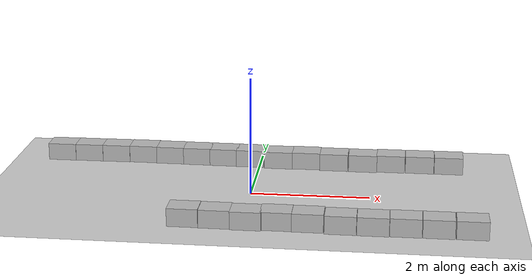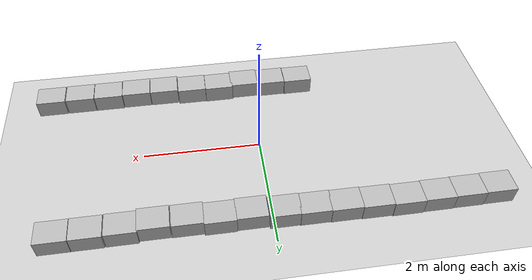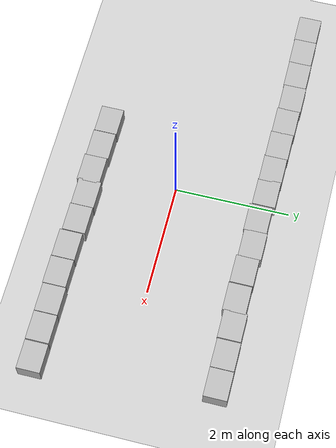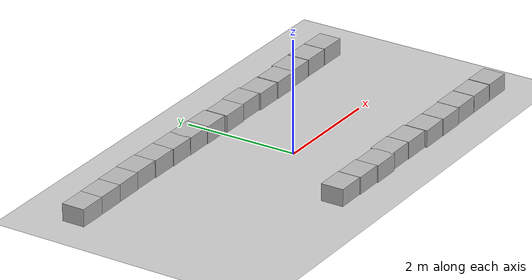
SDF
<sdf version="1.7">
 <world name="default">
  <light name="sun" type="directional">
   <pose>0 0 10 0 -0 0</pose>
   <diffuse>0.8 0.8 0.8 1</diffuse>
   <specular>0.2 0.2 0.2 1</specular>
   <attenuation>
    <range>1000</range>
    <constant>0.9</constant>
    <linear>0.01</linear>
    <quadratic>0.001</quadratic>
   </attenuation>
   <direction>-0.5 0.1 -0.9</direction>
   <spot><inner_angle>0</inner_angle><outer_angle>0</outer_angle><falloff>0</falloff></spot>
  </light>
  <model name="ground_plane">
   <static>1</static>
   <link name="link">
    <collision name="collision">
     <geometry><plane><normal>0 0 1</normal><size>100 100</size></plane></geometry>
     <surface><friction><ode><mu>100</mu><mu2>50</mu2></ode></friction></surface>
    </collision>
    <visual name="visual">
     <cast_shadows>0</cast_shadows>
     <geometry><plane><normal>0 0 1</normal><size>100 100</size></plane></geometry>
     <material>
      <script><uri>file://media/materials/scripts/gazebo.material</uri><name>Gazebo/Grey</name></script>
     </material>
    </visual>
   </link>
  </model>
  <gravity>0 0 -9.8</gravity>
  <magnetic_field>6e-06 2.3e-05 -4.2e-05</magnetic_field>
  <atmosphere type="adiabatic"/>
  <physics type="ode">
   <max_step_size>0.001</max_step_size>
   <real_time_factor>1</real_time_factor>
   <real_time_update_rate>1000</real_time_update_rate>
  </physics>
  <scene><ambient>0.4 0.4 0.4 1</ambient><background>0.7 0.7 0.7 1</background><shadows>1</shadows></scene>
  <audio><device>default</device></audio>
  <spherical_coordinates>
   <surface_model>EARTH_WGS84</surface_model>
   <latitude_deg>0</latitude_deg>
   <longitude_deg>0</longitude_deg>
   <elevation>0</elevation>
   <heading_deg>0</heading_deg>
  </spherical_coordinates>
  <model name="cardboard_box_clone">
   <pose>-3.61822 1.57708 0.15 0 -0 0</pose>
   <link name="link">
    <inertial>
     <mass>2</mass>
     <inertia>
      <ixx>0.0416667</ixx>
      <ixy>0</ixy>
      <ixz>0</ixz>
      <iyy>0.0566667</iyy>
      <iyz>0</iyz>
      <izz>0.0683333</izz>
     </inertia>
    </inertial>
    <collision name="collision">
     <geometry><box><size>0.5 0.4 0.3</size></box></geometry>
     <surface>
      <friction><ode><mu>1</mu><mu2>1</mu2></ode></friction>
      <contact><ode><kp>1e+07</kp><kd>1</kd><min_depth>0.001</min_depth><max_vel>0.1</max_vel></ode></contact>
     </surface>
    </collision>
    <visual name="visual">
     <pose>0 0 -0.15 0 -0 0</pose>
     <geometry>
      <mesh><uri>model://cardboard_box/meshes/cardboard_box.dae</uri><scale>1.25932 1.00745 0.755591</scale></mesh>
     </geometry>
    </visual>
   </link>
  </model>
  <model name="cardboard_box_clone_0">
   <pose>-3.11831 1.58363 0.15 0 -0 0</pose>
   <link name="link">
    <inertial>
     <mass>2</mass>
     <inertia>
      <ixx>0.0416667</ixx>
      <ixy>0</ixy>
      <ixz>0</ixz>
      <iyy>0.0566667</iyy>
      <iyz>0</iyz>
      <izz>0.0683333</izz>
     </inertia>
    </inertial>
    <collision name="collision">
     <geometry><box><size>0.5 0.4 0.3</size></box></geometry>
     <surface>
      <friction><ode><mu>1</mu><mu2>1</mu2></ode></friction>
      <contact><ode><kp>1e+07</kp><kd>1</kd><min_depth>0.001</min_depth><max_vel>0.1</max_vel></ode></contact>
     </surface>
    </collision>
    <visual name="visual">
     <pose>0 0 -0.15 0 -0 0</pose>
     <geometry>
      <mesh><uri>model://cardboard_box/meshes/cardboard_box.dae</uri><scale>1.25932 1.00745 0.755591</scale></mesh>
     </geometry>
    </visual>
   </link>
  </model>
  <model name="cardboard_box_clone_0_clone">
   <pose>-2.62109 1.5892 0.15 0 -0 0</pose>
   <link name="link">
    <inertial>
     <mass>2</mass>
     <inertia>
      <ixx>0.0416667</ixx>
      <ixy>0</ixy>
      <ixz>0</ixz>
      <iyy>0.0566667</iyy>
      <iyz>0</iyz>
      <izz>0.0683333</izz>
     </inertia>
    </inertial>
    <collision name="collision">
     <geometry><box><size>0.5 0.4 0.3</size></box></geometry>
     <surface>
      <friction><ode><mu>1</mu><mu2>1</mu2></ode></friction>
      <contact><ode><kp>1e+07</kp><kd>1</kd><min_depth>0.001</min_depth><max_vel>0.1</max_vel></ode></contact>
     </surface>
    </collision>
    <visual name="visual">
     <pose>0 0 -0.15 0 -0 0</pose>
     <geometry>
      <mesh><uri>model://cardboard_box/meshes/cardboard_box.dae</uri><scale>1.25932 1.00745 0.755591</scale></mesh>
     </geometry>
    </visual>
   </link>
  </model>
  <model name="cardboard_box_clone_0_clone_clone">
   <pose>-2.12182 1.5977 0.15 0 -0 0</pose>
   <link name="link">
    <inertial>
     <mass>2</mass>
     <inertia>
      <ixx>0.0416667</ixx>
      <ixy>0</ixy>
      <ixz>0</ixz>
      <iyy>0.0566667</iyy>
      <iyz>0</iyz>
      <izz>0.0683333</izz>
     </inertia>
    </inertial>
    <collision name="collision">
     <geometry><box><size>0.5 0.4 0.3</size></box></geometry>
     <surface>
      <friction><ode><mu>1</mu><mu2>1</mu2></ode></friction>
      <contact><ode><kp>1e+07</kp><kd>1</kd><min_depth>0.001</min_depth><max_vel>0.1</max_vel></ode></contact>
     </surface>
    </collision>
    <visual name="visual">
     <pose>0 0 -0.15 0 -0 0</pose>
     <geometry>
      <mesh><uri>model://cardboard_box/meshes/cardboard_box.dae</uri><scale>1.25932 1.00745 0.755591</scale></mesh>
     </geometry>
    </visual>
   </link>
  </model>
  <model name="cardboard_box_clone_0_clone_clone_clone">
   <pose>-1.62643 1.58487 0.15 0 -0 0</pose>
   <link name="link">
    <inertial>
     <mass>2</mass>
     <inertia>
      <ixx>0.0416667</ixx>
      <ixy>0</ixy>
      <ixz>0</ixz>
      <iyy>0.0566667</iyy>
      <iyz>0</iyz>
      <izz>0.0683333</izz>
     </inertia>
    </inertial>
    <collision name="collision">
     <geometry><box><size>0.5 0.4 0.3</size></box></geometry>
     <surface>
      <friction><ode><mu>1</mu><mu2>1</mu2></ode></friction>
      <contact><ode><kp>1e+07</kp><kd>1</kd><min_depth>0.001</min_depth><max_vel>0.1</max_vel></ode></contact>
     </surface>
    </collision>
    <visual name="visual">
     <pose>0 0 -0.15 0 -0 0</pose>
     <geometry>
      <mesh><uri>model://cardboard_box/meshes/cardboard_box.dae</uri><scale>1.25932 1.00745 0.755591</scale></mesh>
     </geometry>
    </visual>
   </link>
  </model>
  <model name="cardboard_box_clone_0_clone_clone_clone_clone">
   <pose>-1.13443 1.57519 0.15 0 -0 0</pose>
   <link name="link">
    <inertial>
     <mass>2</mass>
     <inertia>
      <ixx>0.0416667</ixx>
      <ixy>0</ixy>
      <ixz>0</ixz>
      <iyy>0.0566667</iyy>
      <iyz>0</iyz>
      <izz>0.0683333</izz>
     </inertia>
    </inertial>
    <collision name="collision">
     <geometry><box><size>0.5 0.4 0.3</size></box></geometry>
     <surface>
      <friction><ode><mu>1</mu><mu2>1</mu2></ode></friction>
      <contact><ode><kp>1e+07</kp><kd>1</kd><min_depth>0.001</min_depth><max_vel>0.1</max_vel></ode></contact>
     </surface>
    </collision>
    <visual name="visual">
     <pose>0 0 -0.15 0 -0 0</pose>
     <geometry>
      <mesh><uri>model://cardboard_box/meshes/cardboard_box.dae</uri><scale>1.25932 1.00745 0.755591</scale></mesh>
     </geometry>
    </visual>
   </link>
  </model>
  <model name="cardboard_box_clone_0_clone_clone_clone_clone_clone">
   <pose>-0.651178 1.56713 0.15 0 -0 0</pose>
   <link name="link">
    <inertial>
     <mass>2</mass>
     <inertia>
      <ixx>0.0416667</ixx>
      <ixy>0</ixy>
      <ixz>0</ixz>
      <iyy>0.0566667</iyy>
      <iyz>0</iyz>
      <izz>0.0683333</izz>
     </inertia>
    </inertial>
    <collision name="collision">
     <geometry><box><size>0.5 0.4 0.3</size></box></geometry>
     <surface>
      <friction><ode><mu>1</mu><mu2>1</mu2></ode></friction>
      <contact><ode><kp>1e+07</kp><kd>1</kd><min_depth>0.001</min_depth><max_vel>0.1</max_vel></ode></contact>
     </surface>
    </collision>
    <visual name="visual">
     <pose>0 0 -0.15 0 -0 0</pose>
     <geometry>
      <mesh><uri>model://cardboard_box/meshes/cardboard_box.dae</uri><scale>1.25932 1.00745 0.755591</scale></mesh>
     </geometry>
    </visual>
   </link>
  </model>
  <model name="cardboard_box_clone_0_clone_clone_clone_clone_clone_clone">
   <pose>-0.171969 1.55906 0.15 0 -0 0</pose>
   <link name="link">
    <inertial>
     <mass>2</mass>
     <inertia>
      <ixx>0.0416667</ixx>
      <ixy>0</ixy>
      <ixz>0</ixz>
      <iyy>0.0566667</iyy>
      <iyz>0</iyz>
      <izz>0.0683333</izz>
     </inertia>
    </inertial>
    <collision name="collision">
     <geometry><box><size>0.5 0.4 0.3</size></box></geometry>
     <surface>
      <friction><ode><mu>1</mu><mu2>1</mu2></ode></friction>
      <contact><ode><kp>1e+07</kp><kd>1</kd><min_depth>0.001</min_depth><max_vel>0.1</max_vel></ode></contact>
     </surface>
    </collision>
    <visual name="visual">
     <pose>0 0 -0.15 0 -0 0</pose>
     <geometry>
      <mesh><uri>model://cardboard_box/meshes/cardboard_box.dae</uri><scale>1.25932 1.00745 0.755591</scale></mesh>
     </geometry>
    </visual>
   </link>
  </model>
  <model name="cardboard_box_clone_0_clone_clone_clone_clone_clone_clone_clone">
   <pose>0.339534 1.52437 0.15 0 -0 0</pose>
   <link name="link">
    <inertial>
     <mass>2</mass>
     <inertia>
      <ixx>0.0416667</ixx>
      <ixy>0</ixy>
      <ixz>0</ixz>
      <iyy>0.0566667</iyy>
      <iyz>0</iyz>
      <izz>0.0683333</izz>
     </inertia>
    </inertial>
    <collision name="collision">
     <geometry><box><size>0.5 0.4 0.3</size></box></geometry>
     <surface>
      <friction><ode><mu>1</mu><mu2>1</mu2></ode></friction>
      <contact><ode><kp>1e+07</kp><kd>1</kd><min_depth>0.001</min_depth><max_vel>0.1</max_vel></ode></contact>
     </surface>
    </collision>
    <visual name="visual">
     <pose>0 0 -0.15 0 -0 0</pose>
     <geometry>
      <mesh><uri>model://cardboard_box/meshes/cardboard_box.dae</uri><scale>1.25932 1.00745 0.755591</scale></mesh>
     </geometry>
    </visual>
   </link>
  </model>
  <model name="cardboard_box_clone_0_clone_clone_clone_clone_clone_clone_clone_0">
   <pose>0.832769 1.53917 0.15 0 -0 0</pose>
   <link name="link">
    <inertial>
     <mass>2</mass>
     <inertia>
      <ixx>0.0416667</ixx>
      <ixy>0</ixy>
      <ixz>0</ixz>
      <iyy>0.0566667</iyy>
      <iyz>0</iyz>
      <izz>0.0683333</izz>
     </inertia>
    </inertial>
    <collision name="collision">
     <geometry><box><size>0.5 0.4 0.3</size></box></geometry>
     <surface>
      <friction><ode><mu>1</mu><mu2>1</mu2></ode></friction>
      <contact><ode><kp>1e+07</kp><kd>1</kd><min_depth>0.001</min_depth><max_vel>0.1</max_vel></ode></contact>
     </surface>
    </collision>
    <visual name="visual">
     <pose>0 0 -0.15 0 -0 0</pose>
     <geometry>
      <mesh><uri>model://cardboard_box/meshes/cardboard_box.dae</uri><scale>1.25932 1.00745 0.755591</scale></mesh>
     </geometry>
    </visual>
   </link>
  </model>
  <model name="cardboard_box_clone_0_clone_clone_clone_clone_clone_clone_clone_1">
   <pose>1.32888 1.51315 0.15 0 -0 0</pose>
   <link name="link">
    <inertial>
     <mass>2</mass>
     <inertia>
      <ixx>0.0416667</ixx>
      <ixy>0</ixy>
      <ixz>0</ixz>
      <iyy>0.0566667</iyy>
      <iyz>0</iyz>
      <izz>0.0683333</izz>
     </inertia>
    </inertial>
    <collision name="collision">
     <geometry><box><size>0.5 0.4 0.3</size></box></geometry>
     <surface>
      <friction><ode><mu>1</mu><mu2>1</mu2></ode></friction>
      <contact><ode><kp>1e+07</kp><kd>1</kd><min_depth>0.001</min_depth><max_vel>0.1</max_vel></ode></contact>
     </surface>
    </collision>
    <visual name="visual">
     <pose>0 0 -0.15 0 -0 0</pose>
     <geometry>
      <mesh><uri>model://cardboard_box/meshes/cardboard_box.dae</uri><scale>1.25932 1.00745 0.755591</scale></mesh>
     </geometry>
    </visual>
   </link>
  </model>
  <model name="cardboard_box_clone_0_clone_clone_clone_clone_clone_clone_clone_2">
   <pose>1.84281 1.50584 0.15 0 -0 0</pose>
   <link name="link">
    <inertial>
     <mass>2</mass>
     <inertia>
      <ixx>0.0416667</ixx>
      <ixy>0</ixy>
      <ixz>0</ixz>
      <iyy>0.0566667</iyy>
      <iyz>0</iyz>
      <izz>0.0683333</izz>
     </inertia>
    </inertial>
    <collision name="collision">
     <geometry><box><size>0.5 0.4 0.3</size></box></geometry>
     <surface>
      <friction><ode><mu>1</mu><mu2>1</mu2></ode></friction>
      <contact><ode><kp>1e+07</kp><kd>1</kd><min_depth>0.001</min_depth><max_vel>0.1</max_vel></ode></contact>
     </surface>
    </collision>
    <visual name="visual">
     <pose>0 0 -0.15 0 -0 0</pose>
     <geometry>
      <mesh><uri>model://cardboard_box/meshes/cardboard_box.dae</uri><scale>1.25932 1.00745 0.755591</scale></mesh>
     </geometry>
    </visual>
   </link>
  </model>
  <model name="cardboard_box_clone_0_clone_clone_clone_clone_clone_clone_clone_3">
   <pose>2.33156 1.5368 0.15 0 -0 0</pose>
   <link name="link">
    <inertial>
     <mass>2</mass>
     <inertia>
      <ixx>0.0416667</ixx>
      <ixy>0</ixy>
      <ixz>0</ixz>
      <iyy>0.0566667</iyy>
      <iyz>0</iyz>
      <izz>0.0683333</izz>
     </inertia>
    </inertial>
    <collision name="collision">
     <geometry><box><size>0.5 0.4 0.3</size></box></geometry>
     <surface>
      <friction><ode><mu>1</mu><mu2>1</mu2></ode></friction>
      <contact><ode><kp>1e+07</kp><kd>1</kd><min_depth>0.001</min_depth><max_vel>0.1</max_vel></ode></contact>
     </surface>
    </collision>
    <visual name="visual">
     <pose>0 0 -0.15 0 -0 0</pose>
     <geometry>
      <mesh><uri>model://cardboard_box/meshes/cardboard_box.dae</uri><scale>1.25932 1.00745 0.755591</scale></mesh>
     </geometry>
    </visual>
   </link>
  </model>
  <model name="cardboard_box_clone_0_clone_clone_clone_clone_clone_clone_clone_4">
   <pose>2.84455 1.54299 0.15 0 -0 0</pose>
   <link name="link">
    <inertial>
     <mass>2</mass>
     <inertia>
      <ixx>0.0416667</ixx>
      <ixy>0</ixy>
      <ixz>0</ixz>
      <iyy>0.0566667</iyy>
      <iyz>0</iyz>
      <izz>0.0683333</izz>
     </inertia>
    </inertial>
    <collision name="collision">
     <geometry><box><size>0.5 0.4 0.3</size></box></geometry>
     <surface>
      <friction><ode><mu>1</mu><mu2>1</mu2></ode></friction>
      <contact><ode><kp>1e+07</kp><kd>1</kd><min_depth>0.001</min_depth><max_vel>0.1</max_vel></ode></contact>
     </surface>
    </collision>
    <visual name="visual">
     <pose>0 0 -0.15 0 -0 0</pose>
     <geometry>
      <mesh><uri>model://cardboard_box/meshes/cardboard_box.dae</uri><scale>1.25932 1.00745 0.755591</scale></mesh>
     </geometry>
    </visual>
   </link>
  </model>
  <model name="cardboard_box_clone_0_clone_clone_clone_clone_clone_clone_clone_5">
   <pose>3.35057 1.54472 0.15 0 -0 0</pose>
   <link name="link">
    <inertial>
     <mass>2</mass>
     <inertia>
      <ixx>0.0416667</ixx>
      <ixy>0</ixy>
      <ixz>0</ixz>
      <iyy>0.0566667</iyy>
      <iyz>0</iyz>
      <izz>0.0683333</izz>
     </inertia>
    </inertial>
    <collision name="collision">
     <geometry><box><size>0.5 0.4 0.3</size></box></geometry>
     <surface>
      <friction><ode><mu>1</mu><mu2>1</mu2></ode></friction>
      <contact><ode><kp>1e+07</kp><kd>1</kd><min_depth>0.001</min_depth><max_vel>0.1</max_vel></ode></contact>
     </surface>
    </collision>
    <visual name="visual">
     <pose>0 0 -0.15 0 -0 0</pose>
     <geometry>
      <mesh><uri>model://cardboard_box/meshes/cardboard_box.dae</uri><scale>1.25932 1.00745 0.755591</scale></mesh>
     </geometry>
    </visual>
   </link>
  </model>
  <model name="cardboard_box_clone_0_clone_clone_clone_clone_clone_clone_clone_2_clone">
   <pose>3.62415 -1.47103 0.15 0 -0 0</pose>
   <link name="link">
    <inertial>
     <mass>2</mass>
     <inertia>
      <ixx>0.0416667</ixx>
      <ixy>0</ixy>
      <ixz>0</ixz>
      <iyy>0.0566667</iyy>
      <iyz>0</iyz>
      <izz>0.0683333</izz>
     </inertia>
    </inertial>
    <collision name="collision">
     <geometry><box><size>0.5 0.4 0.3</size></box></geometry>
     <surface>
      <friction><ode><mu>1</mu><mu2>1</mu2></ode></friction>
      <contact><ode><kp>1e+07</kp><kd>1</kd><min_depth>0.001</min_depth><max_vel>0.1</max_vel></ode></contact>
     </surface>
    </collision>
    <visual name="visual">
     <pose>0 0 -0.15 0 -0 0</pose>
     <geometry>
      <mesh><uri>model://cardboard_box/meshes/cardboard_box.dae</uri><scale>1.25932 1.00745 0.755591</scale></mesh>
     </geometry>
    </visual>
   </link>
  </model>
  <model name="cardboard_box_clone_0_clone_clone_clone_clone_clone_clone_clone_2_clone_0">
   <pose>3.10866 -1.47434 0.15 0 -0 0</pose>
   <link name="link">
    <inertial>
     <mass>2</mass>
     <inertia>
      <ixx>0.0416667</ixx>
      <ixy>0</ixy>
      <ixz>0</ixz>
      <iyy>0.0566667</iyy>
      <iyz>0</iyz>
      <izz>0.0683333</izz>
     </inertia>
    </inertial>
    <collision name="collision">
     <geometry><box><size>0.5 0.4 0.3</size></box></geometry>
     <surface>
      <friction><ode><mu>1</mu><mu2>1</mu2></ode></friction>
      <contact><ode><kp>1e+07</kp><kd>1</kd><min_depth>0.001</min_depth><max_vel>0.1</max_vel></ode></contact>
     </surface>
    </collision>
    <visual name="visual">
     <pose>0 0 -0.15 0 -0 0</pose>
     <geometry>
      <mesh><uri>model://cardboard_box/meshes/cardboard_box.dae</uri><scale>1.25932 1.00745 0.755591</scale></mesh>
     </geometry>
    </visual>
   </link>
  </model>
  <model name="cardboard_box_clone_0_clone_clone_clone_clone_clone_clone_clone_2_clone_1">
   <pose>2.60113 -1.47558 0.15 0 -0 0</pose>
   <link name="link">
    <inertial>
     <mass>2</mass>
     <inertia>
      <ixx>0.0416667</ixx>
      <ixy>0</ixy>
      <ixz>0</ixz>
      <iyy>0.0566667</iyy>
      <iyz>0</iyz>
      <izz>0.0683333</izz>
     </inertia>
    </inertial>
    <collision name="collision">
     <geometry><box><size>0.5 0.4 0.3</size></box></geometry>
     <surface>
      <friction><ode><mu>1</mu><mu2>1</mu2></ode></friction>
      <contact><ode><kp>1e+07</kp><kd>1</kd><min_depth>0.001</min_depth><max_vel>0.1</max_vel></ode></contact>
     </surface>
    </collision>
    <visual name="visual">
     <pose>0 0 -0.15 0 -0 0</pose>
     <geometry>
      <mesh><uri>model://cardboard_box/meshes/cardboard_box.dae</uri><scale>1.25932 1.00745 0.755591</scale></mesh>
     </geometry>
    </visual>
   </link>
  </model>
  <model name="cardboard_box_clone_0_clone_clone_clone_clone_clone_clone_clone_2_clone_2">
   <pose>2.09485 -1.48711 0.15 0 -0 0</pose>
   <link name="link">
    <inertial>
     <mass>2</mass>
     <inertia>
      <ixx>0.0416667</ixx>
      <ixy>0</ixy>
      <ixz>0</ixz>
      <iyy>0.0566667</iyy>
      <iyz>0</iyz>
      <izz>0.0683333</izz>
     </inertia>
    </inertial>
    <collision name="collision">
     <geometry><box><size>0.5 0.4 0.3</size></box></geometry>
     <surface>
      <friction><ode><mu>1</mu><mu2>1</mu2></ode></friction>
      <contact><ode><kp>1e+07</kp><kd>1</kd><min_depth>0.001</min_depth><max_vel>0.1</max_vel></ode></contact>
     </surface>
    </collision>
    <visual name="visual">
     <pose>0 0 -0.15 0 -0 0</pose>
     <geometry>
      <mesh><uri>model://cardboard_box/meshes/cardboard_box.dae</uri><scale>1.25932 1.00745 0.755591</scale></mesh>
     </geometry>
    </visual>
   </link>
  </model>
  <model name="cardboard_box_clone_0_clone_clone_clone_clone_clone_clone_clone_2_clone_3">
   <pose>1.58866 -1.48219 0.15 0 -0 0</pose>
   <link name="link">
    <inertial>
     <mass>2</mass>
     <inertia>
      <ixx>0.0416667</ixx>
      <ixy>0</ixy>
      <ixz>0</ixz>
      <iyy>0.0566667</iyy>
      <iyz>0</iyz>
      <izz>0.0683333</izz>
     </inertia>
    </inertial>
    <collision name="collision">
     <geometry><box><size>0.5 0.4 0.3</size></box></geometry>
     <surface>
      <friction><ode><mu>1</mu><mu2>1</mu2></ode></friction>
      <contact><ode><kp>1e+07</kp><kd>1</kd><min_depth>0.001</min_depth><max_vel>0.1</max_vel></ode></contact>
     </surface>
    </collision>
    <visual name="visual">
     <pose>0 0 -0.15 0 -0 0</pose>
     <geometry>
      <mesh><uri>model://cardboard_box/meshes/cardboard_box.dae</uri><scale>1.25932 1.00745 0.755591</scale></mesh>
     </geometry>
    </visual>
   </link>
  </model>
  <model name="cardboard_box_clone_0_clone_clone_clone_clone_clone_clone_clone_2_clone_4">
   <pose>1.0771 -1.44842 0.15 0 -0 0</pose>
   <link name="link">
    <inertial>
     <mass>2</mass>
     <inertia>
      <ixx>0.0416667</ixx>
      <ixy>0</ixy>
      <ixz>0</ixz>
      <iyy>0.0566667</iyy>
      <iyz>0</iyz>
      <izz>0.0683333</izz>
     </inertia>
    </inertial>
    <collision name="collision">
     <geometry><box><size>0.5 0.4 0.3</size></box></geometry>
     <surface>
      <friction><ode><mu>1</mu><mu2>1</mu2></ode></friction>
      <contact><ode><kp>1e+07</kp><kd>1</kd><min_depth>0.001</min_depth><max_vel>0.1</max_vel></ode></contact>
     </surface>
    </collision>
    <visual name="visual">
     <pose>0 0 -0.15 0 -0 0</pose>
     <geometry>
      <mesh><uri>model://cardboard_box/meshes/cardboard_box.dae</uri><scale>1.25932 1.00745 0.755591</scale></mesh>
     </geometry>
    </visual>
   </link>
  </model>
  <model name="cardboard_box_clone_0_clone_clone_clone_clone_clone_clone_clone_2_clone_5">
   <pose>0.575046 -1.43866 0.15 0 -0 0</pose>
   <link name="link">
    <inertial>
     <mass>2</mass>
     <inertia>
      <ixx>0.0416667</ixx>
      <ixy>0</ixy>
      <ixz>0</ixz>
      <iyy>0.0566667</iyy>
      <iyz>0</iyz>
      <izz>0.0683333</izz>
     </inertia>
    </inertial>
    <collision name="collision">
     <geometry><box><size>0.5 0.4 0.3</size></box></geometry>
     <surface>
      <friction><ode><mu>1</mu><mu2>1</mu2></ode></friction>
      <contact><ode><kp>1e+07</kp><kd>1</kd><min_depth>0.001</min_depth><max_vel>0.1</max_vel></ode></contact>
     </surface>
    </collision>
    <visual name="visual">
     <pose>0 0 -0.15 0 -0 0</pose>
     <geometry>
      <mesh><uri>model://cardboard_box/meshes/cardboard_box.dae</uri><scale>1.25932 1.00745 0.755591</scale></mesh>
     </geometry>
    </visual>
   </link>
  </model>
  <model name="cardboard_box_clone_0_clone_clone_clone_clone_clone_clone_clone_2_clone_6">
   <pose>0.100963 -1.46881 0.15 0 -0 0</pose>
   <link name="link">
    <inertial>
     <mass>2</mass>
     <inertia>
      <ixx>0.0416667</ixx>
      <ixy>0</ixy>
      <ixz>0</ixz>
      <iyy>0.0566667</iyy>
      <iyz>0</iyz>
      <izz>0.0683333</izz>
     </inertia>
    </inertial>
    <collision name="collision">
     <geometry><box><size>0.5 0.4 0.3</size></box></geometry>
     <surface>
      <friction><ode><mu>1</mu><mu2>1</mu2></ode></friction>
      <contact><ode><kp>1e+07</kp><kd>1</kd><min_depth>0.001</min_depth><max_vel>0.1</max_vel></ode></contact>
     </surface>
    </collision>
    <visual name="visual">
     <pose>0 0 -0.15 0 -0 0</pose>
     <geometry>
      <mesh><uri>model://cardboard_box/meshes/cardboard_box.dae</uri><scale>1.25932 1.00745 0.755591</scale></mesh>
     </geometry>
    </visual>
   </link>
  </model>
  <model name="cardboard_box_clone_0_clone_clone_clone_clone_clone_clone_clone_2_clone_7">
   <pose>-0.39862 -1.44855 0.15 0 -0 0</pose>
   <link name="link">
    <inertial>
     <mass>2</mass>
     <inertia>
      <ixx>0.0416667</ixx>
      <ixy>0</ixy>
      <ixz>0</ixz>
      <iyy>0.0566667</iyy>
      <iyz>0</iyz>
      <izz>0.0683333</izz>
     </inertia>
    </inertial>
    <collision name="collision">
     <geometry><box><size>0.5 0.4 0.3</size></box></geometry>
     <surface>
      <friction><ode><mu>1</mu><mu2>1</mu2></ode></friction>
      <contact><ode><kp>1e+07</kp><kd>1</kd><min_depth>0.001</min_depth><max_vel>0.1</max_vel></ode></contact>
     </surface>
    </collision>
    <visual name="visual">
     <pose>0 0 -0.15 0 -0 0</pose>
     <geometry>
      <mesh><uri>model://cardboard_box/meshes/cardboard_box.dae</uri><scale>1.25932 1.00745 0.755591</scale></mesh>
     </geometry>
    </visual>
   </link>
  </model>
  <model name="cardboard_box_clone_0_clone_clone_clone_clone_clone_clone_clone_2_clone_8">
   <pose>-0.903917 -1.43787 0.15 0 -0 0</pose>
   <link name="link">
    <inertial>
     <mass>2</mass>
     <inertia>
      <ixx>0.0416667</ixx>
      <ixy>0</ixy>
      <ixz>0</ixz>
      <iyy>0.0566667</iyy>
      <iyz>0</iyz>
      <izz>0.0683333</izz>
     </inertia>
    </inertial>
    <collision name="collision">
     <geometry><box><size>0.5 0.4 0.3</size></box></geometry>
     <surface>
      <friction><ode><mu>1</mu><mu2>1</mu2></ode></friction>
      <contact><ode><kp>1e+07</kp><kd>1</kd><min_depth>0.001</min_depth><max_vel>0.1</max_vel></ode></contact>
     </surface>
    </collision>
    <visual name="visual">
     <pose>0 0 -0.15 0 -0 0</pose>
     <geometry>
      <mesh><uri>model://cardboard_box/meshes/cardboard_box.dae</uri><scale>1.25932 1.00745 0.755591</scale></mesh>
     </geometry>
    </visual>
   </link>
  </model>
 </world>
</sdf>
